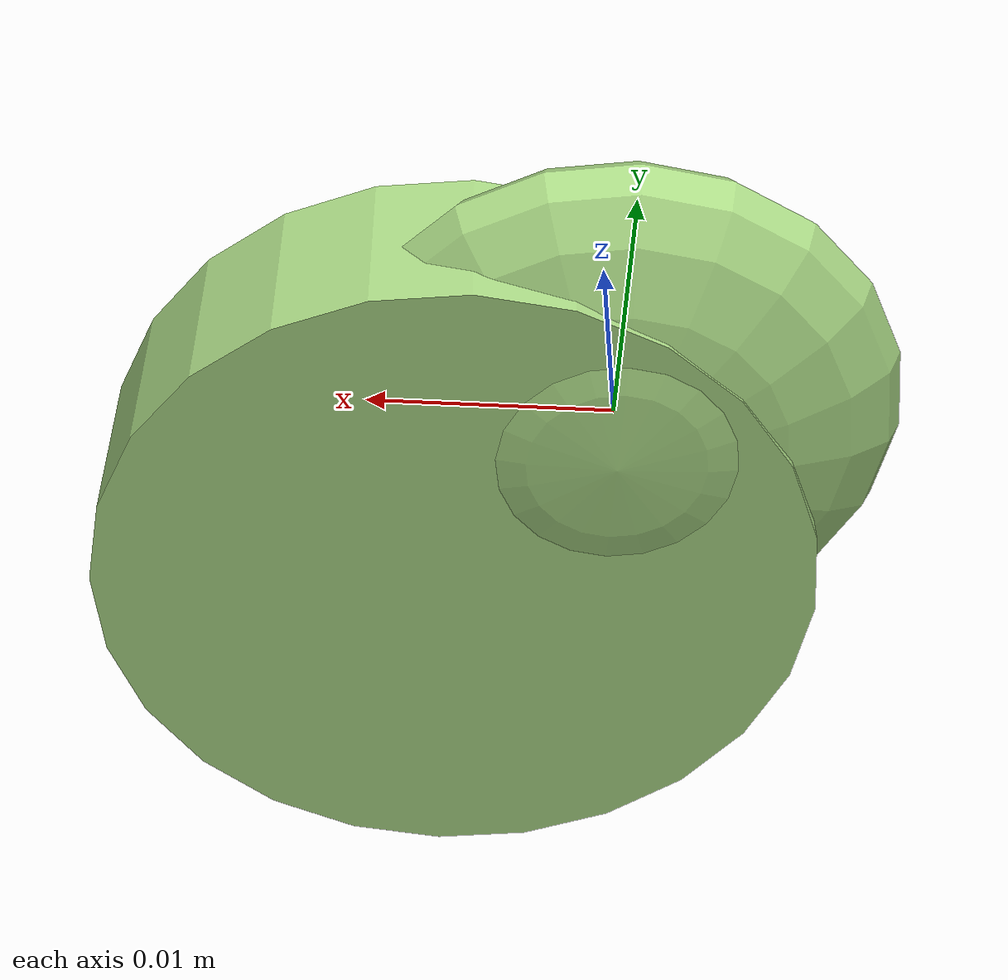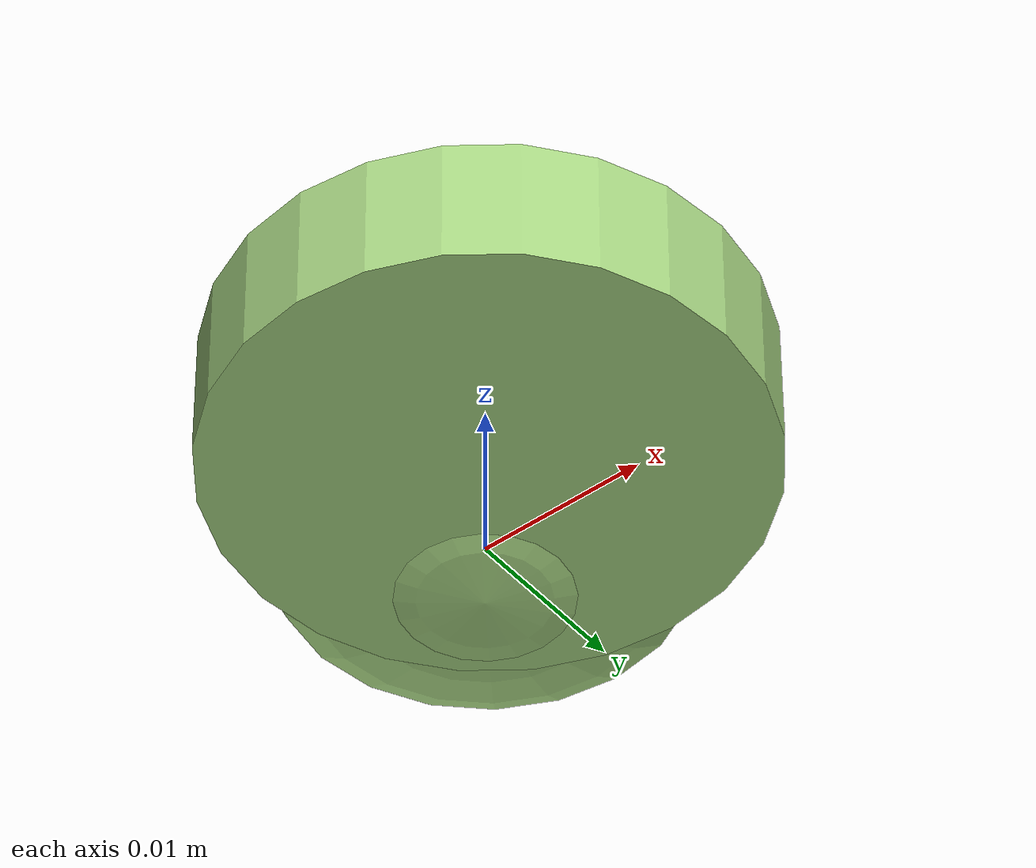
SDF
<?xml version="1.0" ?>
<!-- |    This document was autogenerated by xmacro from data/veggie_template/veggie_base.sdf.xacro  | -->
<!-- |    EDITING THIS FILE BY HAND IS NOT RECOMMENDED                                               | -->
<sdf version="1.8">
	<!-- Parameters -->
	<!-- Base -->
	<!-- Joint 0 -->
	<!-- Link 1 -->
	<!-- Joint 1 -->
	<!-- Link 2 -->
	<!-- Primitives -->
	<!-- All dimensions are half -->
	<!-- Object -->
	<model name="veggie">
		<!-- link0 -->
		<link name="link0">
			<inertial>
				<mass>0.0021820680715485875</mass>
				<inertia>
					<ixx>6.484018425736413e-08</ixx>
					<ixy>0</ixy>
					<ixz>0</ixz>
					<iyy>6.56448716535908e-08</iyy>
					<iyz>0</iyz>
					<izz>1.1739027002506504e-07</izz>
				</inertia>
			</inertial>
			<visual name="link0_visual">
				<pose>0 0 0 0 0 0</pose>
				<geometry>
					<ellipsoid>
						<radii>0.011636847186767859 0.011557350403447714 0.003873334978677679</radii>
					</ellipsoid>
				</geometry>
				<material>
					<ambient>0.659 0.839 0.514 1</ambient>
					<diffuse>0.659 0.839 0.514 1</diffuse>
					<specular>0 0 0 0</specular>
					<emissive>0 0 0 1</emissive>
				</material>
			</visual>
			<collision name="link0_collision">
				<pose>0 0 0 0 0 0 </pose>
				<geometry>
					<ellipsoid>
						<radii>0.011636847186767859 0.011557350403447714 0.003873334978677679</radii>
					</ellipsoid>
				</geometry>
			</collision>
		</link>
		<!-- link1 -->
		<joint name="joint0" type="fixed">
			<pose relative_to="link0">0.006051715922064336 -0.007189978054684967 0.00047563305248409573 0.0 0.0 0.0</pose>
			<parent>link0</parent>
			<child>link1</child>
		</joint>
		<link name="link1">
			<pose relative_to="joint0">0 0 0 0 0 0</pose>
			<inertial>
				<mass>0.0055654933712412005</mass>
				<inertia>
					<ixx>3.4057744378514976e-07</ixx>
					<ixy>0</ixy>
					<ixz>0</ixz>
					<iyy>3.4057744378514976e-07</iyy>
					<iyz>0</iyz>
					<izz>6.230916138470589e-07</izz>
				</inertia>
			</inertial>
			<visual name="link1_visual">
				<pose>0 0 0 0 0 0</pose>
				<geometry>
					<cylinder>
						<radius>0.014963704249807258</radius>
						<length>0.007911786322959325</length>
					</cylinder>
				</geometry>
				<material>
					<ambient>0.659 0.839 0.514 1</ambient>
					<diffuse>0.659 0.839 0.514 1</diffuse>
					<specular>0 0 0 0</specular>
					<emissive>0 0 0 1</emissive>
				</material>
			</visual>
			<collision name="link1_collision">
				<pose>0 0 0 0 0 0 </pose>
				<geometry>
					<cylinder>
						<radius>0.014963704249807258</radius>
						<length>0.007911786322959325</length>
					</cylinder>
				</geometry>
			</collision>
		</link>
		<!-- link2 -->
	</model>
</sdf>
